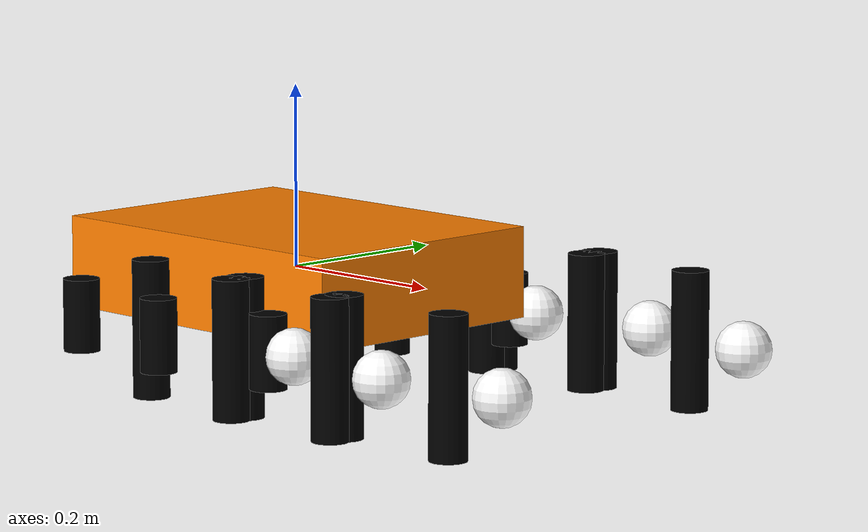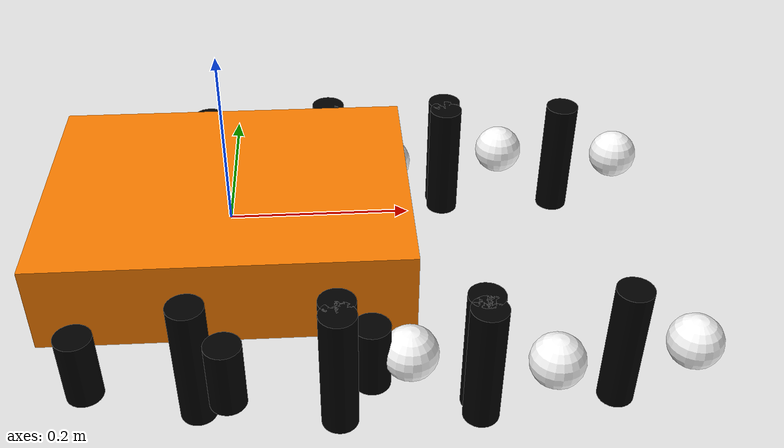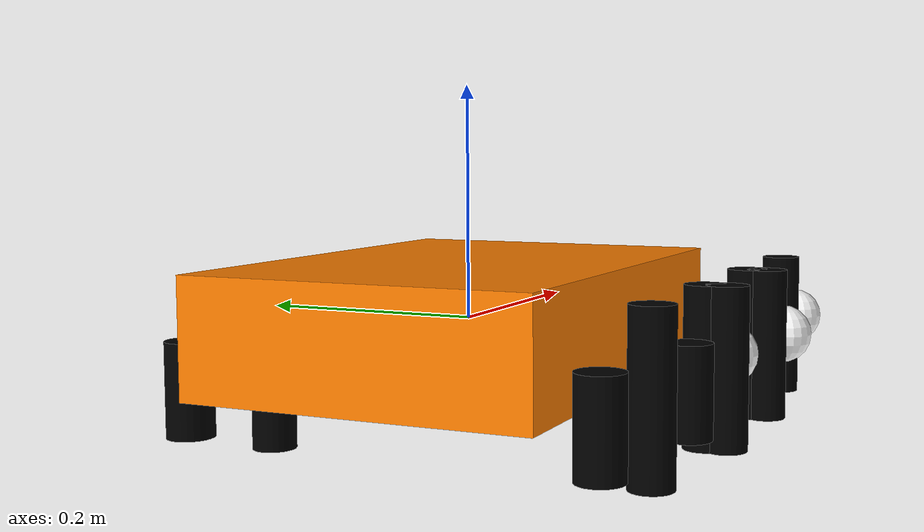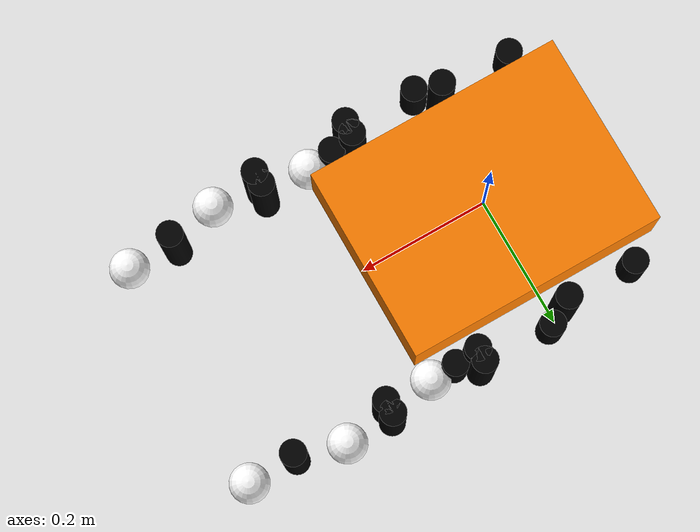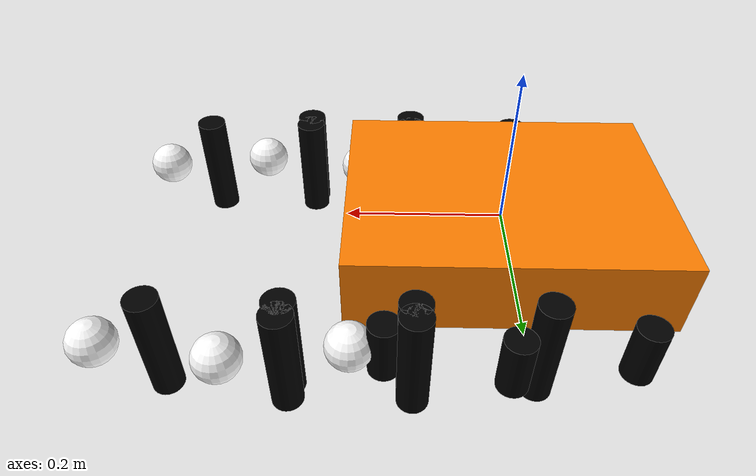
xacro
<?xml version="1.0"?>
<robot xmlns:xacro="http://www.ros.org/wiki/xacro" name="hexapod_robot">

  <!-- 包含Gazebo和ros2_control的宏定义 -->
  <xacro:include filename="$(find hexapod_description)/urdf/hexapod.gazebo.xacro"/>
  <xacro:include filename="$(find hexapod_description)/urdf/hexapod.ros2_control.xacro"/>

  <!-- 材料定义 -->
  <material name="black">
    <color rgba="0.0 0.0 0.0 1.0"/>
  </material>
  <material name="orange">
    <color rgba="1.0 0.5 0.0 1.0"/>
  </material>
  <material name="white">
    <color rgba="1.0 1.0 1.0 1.0"/>
  </material>

  <!-- 基础参数 -->
  <xacro:property name="body_length" value="0.4"/>
  <xacro:property name="body_width" value="0.3"/>
  <xacro:property name="body_height" value="0.1"/>
  <xacro:property name="body_mass" value="5.0"/>

  <!-- 腿部参数 -->
  <xacro:property name="coxa_length" value="0.08"/>
  <xacro:property name="femur_length" value="0.15"/>
  <xacro:property name="tibia_length" value="0.15"/>
  <xacro:property name="leg_radius" value="0.02"/>

  <!-- 主体 -->
  <link name="base_link">
    <visual>
      <origin xyz="0 0 0" rpy="0 0 0"/>
      <geometry>
        <box size="${body_length} ${body_width} ${body_height}"/>
      </geometry>
      <material name="orange"/>
    </visual>
    <collision>
      <origin xyz="0 0 0" rpy="0 0 0"/>
      <geometry>
        <box size="${body_length} ${body_width} ${body_height}"/>
      </geometry>
    </collision>
    <inertial>
      <mass value="${body_mass}"/>
      <origin xyz="0 0 0"/>
      <inertia ixx="0.1" ixy="0.0" ixz="0.0" iyy="0.1" iyz="0.0" izz="0.1"/>
    </inertial>
  </link>

  <!-- 腿部宏定义 -->
  <xacro:macro name="leg" params="leg_id side x_pos y_pos coxa_angle">

    <!-- Coxa关节 -->
    <joint name="coxa_${leg_id}_joint" type="revolute">
      <parent link="base_link"/>
      <child link="coxa_${leg_id}_link"/>
      <origin xyz="${x_pos} ${y_pos} -${body_height/2}" rpy="0 0 ${coxa_angle}"/>
      <axis xyz="0 0 1"/>
      <limit lower="${-1.57}" upper="${1.57}" effort="10" velocity="5"/>
    </joint>

    <link name="coxa_${leg_id}_link">
      <visual>
        <origin xyz="0 0 0" rpy="0 0 0"/>
        <geometry>
          <cylinder radius="${leg_radius}" length="${coxa_length}"/>
        </geometry>
        <material name="black"/>
      </visual>
      <collision>
        <origin xyz="0 0 0" rpy="0 0 0"/>
        <geometry>
          <cylinder radius="${leg_radius}" length="${coxa_length}"/>
        </geometry>
      </collision>
      <inertial>
        <mass value="0.1"/>
        <origin xyz="0 0 0"/>
        <inertia ixx="0.001" ixy="0.0" ixz="0.0" iyy="0.001" iyz="0.0" izz="0.001"/>
      </inertial>
    </link>

    <!-- Femur关节 -->
    <joint name="femur_${leg_id}_joint" type="revolute">
      <parent link="coxa_${leg_id}_link"/>
      <child link="femur_${leg_id}_link"/>
      <origin xyz="${coxa_length/2} 0 0" rpy="0 0 0"/>
      <axis xyz="0 1 0"/>
      <limit lower="${-2.0}" upper="${2.0}" effort="10" velocity="5"/>
    </joint>

    <link name="femur_${leg_id}_link">
      <visual>
        <origin xyz="${femur_length/2} 0 0" rpy="0 0 0"/>
        <geometry>
          <cylinder radius="${leg_radius}" length="${femur_length}"/>
        </geometry>
        <material name="black"/>
      </visual>
      <collision>
        <origin xyz="${femur_length/2} 0 0" rpy="0 0 0"/>
        <geometry>
          <cylinder radius="${leg_radius}" length="${femur_length}"/>
        </geometry>
      </collision>
      <inertial>
        <mass value="0.2"/>
        <origin xyz="${femur_length/2} 0 0"/>
        <inertia ixx="0.002" ixy="0.0" ixz="0.0" iyy="0.002" iyz="0.0" izz="0.002"/>
      </inertial>
    </link>

    <!-- Tibia关节 -->
    <joint name="tibia_${leg_id}_joint" type="revolute">
      <parent link="femur_${leg_id}_link"/>
      <child link="tibia_${leg_id}_link"/>
      <origin xyz="${femur_length} 0 0" rpy="0 0 0"/>
      <axis xyz="0 1 0"/>
      <limit lower="${-2.5}" upper="${0.5}" effort="10" velocity="5"/>
    </joint>

    <link name="tibia_${leg_id}_link">
      <visual>
        <origin xyz="${tibia_length/2} 0 0" rpy="0 0 0"/>
        <geometry>
          <cylinder radius="${leg_radius}" length="${tibia_length}"/>
        </geometry>
        <material name="black"/>
      </visual>
      <collision>
        <origin xyz="${tibia_length/2} 0 0" rpy="0 0 0"/>
        <geometry>
          <cylinder radius="${leg_radius}" length="${tibia_length}"/>
        </geometry>
      </collision>
      <inertial>
        <mass value="0.15"/>
        <origin xyz="${tibia_length/2} 0 0"/>
        <inertia ixx="0.0015" ixy="0.0" ixz="0.0" iyy="0.0015" iyz="0.0" izz="0.0015"/>
      </inertial>
    </link>

    <!-- 足端 -->
    <joint name="foot_${leg_id}_joint" type="fixed">
      <parent link="tibia_${leg_id}_link"/>
      <child link="foot_${leg_id}_link"/>
      <origin xyz="${tibia_length} 0 0" rpy="0 0 0"/>
    </joint>

    <link name="foot_${leg_id}_link">
      <visual>
        <origin xyz="0 0 0" rpy="0 0 0"/>
        <geometry>
          <sphere radius="0.03"/>
        </geometry>
        <material name="white"/>
      </visual>
      <collision>
        <origin xyz="0 0 0" rpy="0 0 0"/>
        <geometry>
          <sphere radius="0.03"/>
        </geometry>
      </collision>
      <inertial>
        <mass value="0.05"/>
        <origin xyz="0 0 0"/>
        <inertia ixx="0.0001" ixy="0.0" ixz="0.0" iyy="0.0001" iyz="0.0" izz="0.0001"/>
      </inertial>
    </link>

  </xacro:macro>

  <!-- 创建6条腿 -->
  <!-- 左侧3条腿 -->
  <xacro:leg leg_id="1" side="left" x_pos="${body_length/2 - 0.05}" y_pos="${body_width/2 + 0.03}" coxa_angle="0.0"/>
  <xacro:leg leg_id="2" side="left" x_pos="0.0" y_pos="${body_width/2 + 0.05}" coxa_angle="0.0"/>
  <xacro:leg leg_id="3" side="left" x_pos="${-body_length/2 + 0.05}" y_pos="${body_width/2 + 0.03}" coxa_angle="0.0"/>

  <!-- 右侧3条腿 -->
  <xacro:leg leg_id="4" side="right" x_pos="${body_length/2 - 0.05}" y_pos="${-(body_width/2 + 0.03)}" coxa_angle="0.0"/>
  <xacro:leg leg_id="5" side="right" x_pos="0.0" y_pos="${-(body_width/2 + 0.05)}" coxa_angle="0.0"/>
  <xacro:leg leg_id="6" side="right" x_pos="${-(body_length/2 - 0.05)}" y_pos="${-(body_width/2 + 0.03)}" coxa_angle="0.0"/>

  <!-- 包含Gazebo和ros2_control插件 -->
  <xacro:hexapod_gazebo/>
  <xacro:hexapod_ros2_control/>

</robot>
